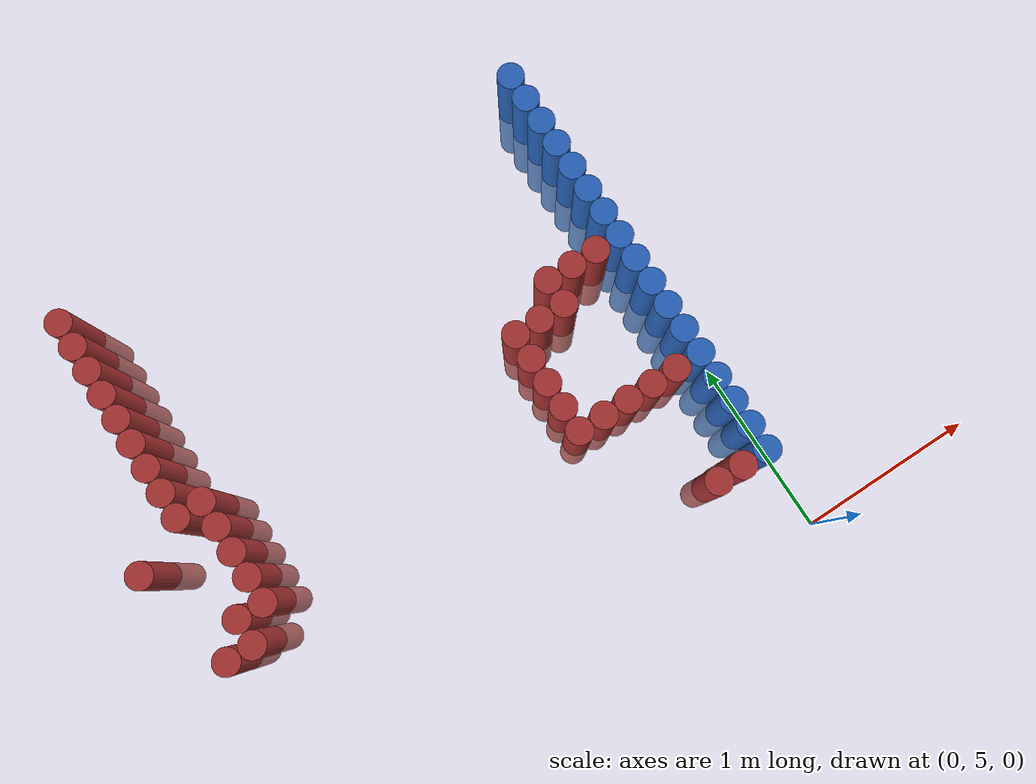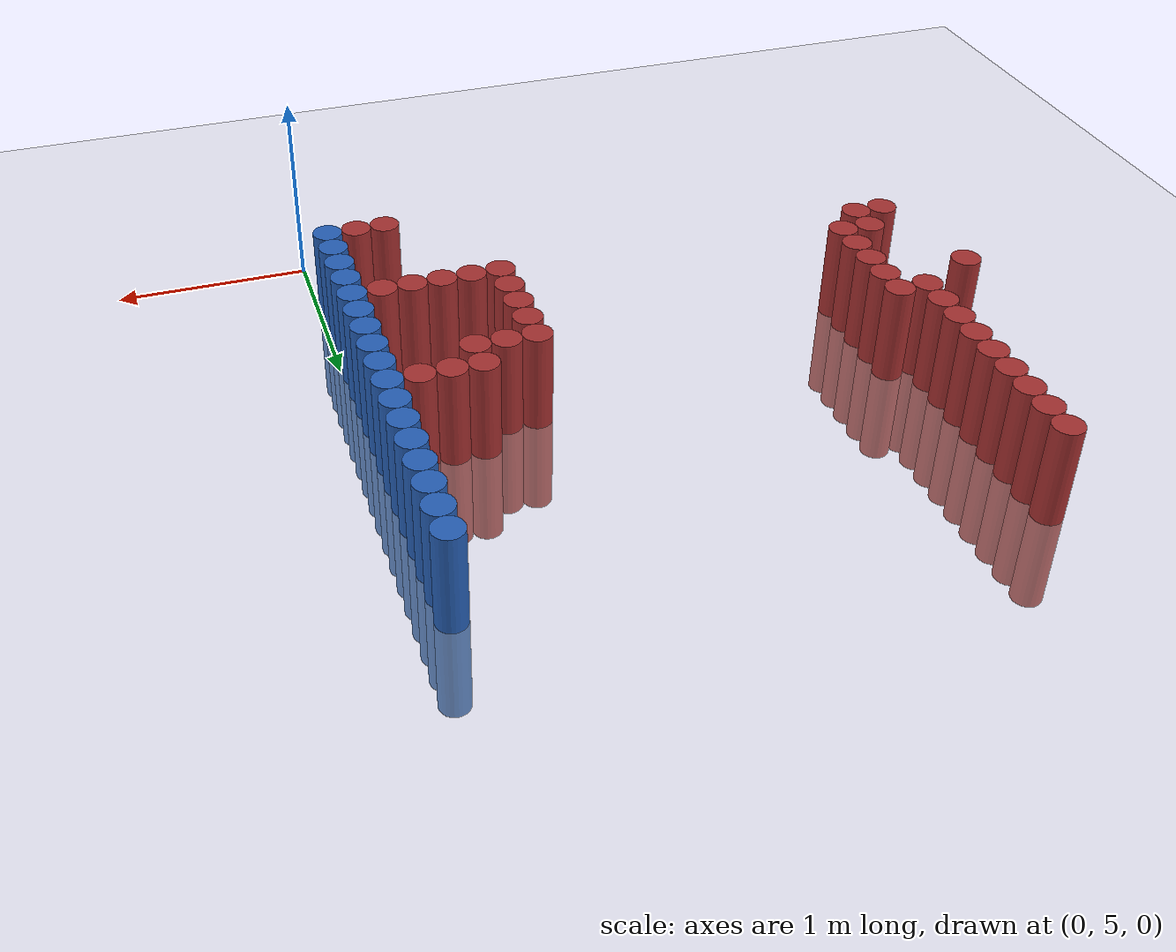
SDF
<sdf version="1.6">
 <world name="default">
  <model name="ground_plane">
   <static>1</static>
   <link name="link">
    <collision name="collision">
     <geometry><plane><normal>0 0 1</normal><size>100 100</size></plane></geometry>
     <surface><friction><ode><mu>100</mu><mu2>50</mu2></ode></friction></surface>
    </collision>
    <visual name="visual">
     <cast_shadows>0</cast_shadows>
     <geometry><plane><normal>0 0 1</normal><size>100 100</size></plane></geometry>
     <material>
      <script><uri>file://media/materials/scripts/gazebo.material</uri><name>Gazebo/Grey</name></script>
     </material>
    </visual>
   </link>
  </model>
  <model name="unit_cylinder_151">
   <static>1</static>
   <pose>-3.075000 6.675000 0.000000 0.000000 0.000000 0.000000</pose>
   <link name="link">
    <inertial>
     <mass>1</mass>
     <inertia><ixx>0.145833</ixx><ixy>0</ixy><ixz>0</ixz><iyy>0.145833</iyy><iyz>0</iyz><izz>0.125</izz></inertia>
    </inertial>
    <collision name="collision">
     <geometry><cylinder><radius>0.075000</radius><length>1</length></cylinder></geometry>
    </collision>
    <visual name="visual">
     <geometry><cylinder><radius>0.075000</radius><length>1</length></cylinder></geometry>
     <material>
      <ambient>0.648000 0.192000 0.192000 1</ambient>
      <diffuse>0.648000 0.192000 0.192000 1</diffuse>
     </material>
     <material>
      <script><name>Gazebo/Grey</name><uri>file://media/materials/scripts/gazebo.material</uri></script>
     </material>
    </visual>
   </link>
  </model>
  <model name="unit_cylinder_153">
   <static>1</static>
   <pose>-2.925000 6.075000 0.000000 0.000000 0.000000 0.000000</pose>
   <link name="link">
    <inertial>
     <mass>1</mass>
     <inertia><ixx>0.145833</ixx><ixy>0</ixy><ixz>0</ixz><iyy>0.145833</iyy><iyz>0</iyz><izz>0.125</izz></inertia>
    </inertial>
    <collision name="collision">
     <geometry><cylinder><radius>0.075000</radius><length>1</length></cylinder></geometry>
    </collision>
    <visual name="visual">
     <geometry><cylinder><radius>0.075000</radius><length>1</length></cylinder></geometry>
     <material>
      <ambient>0.648000 0.192000 0.192000 1</ambient>
      <diffuse>0.648000 0.192000 0.192000 1</diffuse>
     </material>
     <material>
      <script><name>Gazebo/Grey</name><uri>file://media/materials/scripts/gazebo.material</uri></script>
     </material>
    </visual>
   </link>
  </model>
  <model name="unit_cylinder_156">
   <static>1</static>
   <pose>-2.775000 6.075000 0.000000 0.000000 0.000000 0.000000</pose>
   <link name="link">
    <inertial>
     <mass>1</mass>
     <inertia><ixx>0.145833</ixx><ixy>0</ixy><ixz>0</ixz><iyy>0.145833</iyy><iyz>0</iyz><izz>0.125</izz></inertia>
    </inertial>
    <collision name="collision">
     <geometry><cylinder><radius>0.075000</radius><length>1</length></cylinder></geometry>
    </collision>
    <visual name="visual">
     <geometry><cylinder><radius>0.075000</radius><length>1</length></cylinder></geometry>
     <material>
      <ambient>0.648000 0.192000 0.192000 1</ambient>
      <diffuse>0.648000 0.192000 0.192000 1</diffuse>
     </material>
     <material>
      <script><name>Gazebo/Grey</name><uri>file://media/materials/scripts/gazebo.material</uri></script>
     </material>
    </visual>
   </link>
  </model>
  <model name="unit_cylinder_157">
   <static>1</static>
   <pose>-2.775000 6.225000 0.000000 0.000000 0.000000 0.000000</pose>
   <link name="link">
    <inertial>
     <mass>1</mass>
     <inertia><ixx>0.145833</ixx><ixy>0</ixy><ixz>0</ixz><iyy>0.145833</iyy><iyz>0</iyz><izz>0.125</izz></inertia>
    </inertial>
    <collision name="collision">
     <geometry><cylinder><radius>0.075000</radius><length>1</length></cylinder></geometry>
    </collision>
    <visual name="visual">
     <geometry><cylinder><radius>0.075000</radius><length>1</length></cylinder></geometry>
     <material>
      <ambient>0.648000 0.192000 0.192000 1</ambient>
      <diffuse>0.648000 0.192000 0.192000 1</diffuse>
     </material>
     <material>
      <script><name>Gazebo/Grey</name><uri>file://media/materials/scripts/gazebo.material</uri></script>
     </material>
    </visual>
   </link>
  </model>
  <model name="unit_cylinder_158">
   <static>1</static>
   <pose>-2.775000 6.825000 0.000000 0.000000 0.000000 0.000000</pose>
   <link name="link">
    <inertial>
     <mass>1</mass>
     <inertia><ixx>0.145833</ixx><ixy>0</ixy><ixz>0</ixz><iyy>0.145833</iyy><iyz>0</iyz><izz>0.125</izz></inertia>
    </inertial>
    <collision name="collision">
     <geometry><cylinder><radius>0.075000</radius><length>1</length></cylinder></geometry>
    </collision>
    <visual name="visual">
     <geometry><cylinder><radius>0.075000</radius><length>1</length></cylinder></geometry>
     <material>
      <ambient>0.648000 0.192000 0.192000 1</ambient>
      <diffuse>0.648000 0.192000 0.192000 1</diffuse>
     </material>
     <material>
      <script><name>Gazebo/Grey</name><uri>file://media/materials/scripts/gazebo.material</uri></script>
     </material>
    </visual>
   </link>
  </model>
  <model name="unit_cylinder_159">
   <static>1</static>
   <pose>-2.775000 6.975000 0.000000 0.000000 0.000000 0.000000</pose>
   <link name="link">
    <inertial>
     <mass>1</mass>
     <inertia><ixx>0.145833</ixx><ixy>0</ixy><ixz>0</ixz><iyy>0.145833</iyy><iyz>0</iyz><izz>0.125</izz></inertia>
    </inertial>
    <collision name="collision">
     <geometry><cylinder><radius>0.075000</radius><length>1</length></cylinder></geometry>
    </collision>
    <visual name="visual">
     <geometry><cylinder><radius>0.075000</radius><length>1</length></cylinder></geometry>
     <material>
      <ambient>0.648000 0.192000 0.192000 1</ambient>
      <diffuse>0.648000 0.192000 0.192000 1</diffuse>
     </material>
     <material>
      <script><name>Gazebo/Grey</name><uri>file://media/materials/scripts/gazebo.material</uri></script>
     </material>
    </visual>
   </link>
  </model>
  <model name="unit_cylinder_160">
   <static>1</static>
   <pose>-2.775000 7.125000 0.000000 0.000000 0.000000 0.000000</pose>
   <link name="link">
    <inertial>
     <mass>1</mass>
     <inertia><ixx>0.145833</ixx><ixy>0</ixy><ixz>0</ixz><iyy>0.145833</iyy><iyz>0</iyz><izz>0.125</izz></inertia>
    </inertial>
    <collision name="collision">
     <geometry><cylinder><radius>0.075000</radius><length>1</length></cylinder></geometry>
    </collision>
    <visual name="visual">
     <geometry><cylinder><radius>0.075000</radius><length>1</length></cylinder></geometry>
     <material>
      <ambient>0.648000 0.192000 0.192000 1</ambient>
      <diffuse>0.648000 0.192000 0.192000 1</diffuse>
     </material>
     <material>
      <script><name>Gazebo/Grey</name><uri>file://media/materials/scripts/gazebo.material</uri></script>
     </material>
    </visual>
   </link>
  </model>
  <model name="unit_cylinder_161">
   <static>1</static>
   <pose>-2.775000 7.275000 0.000000 0.000000 0.000000 0.000000</pose>
   <link name="link">
    <inertial>
     <mass>1</mass>
     <inertia><ixx>0.145833</ixx><ixy>0</ixy><ixz>0</ixz><iyy>0.145833</iyy><iyz>0</iyz><izz>0.125</izz></inertia>
    </inertial>
    <collision name="collision">
     <geometry><cylinder><radius>0.075000</radius><length>1</length></cylinder></geometry>
    </collision>
    <visual name="visual">
     <geometry><cylinder><radius>0.075000</radius><length>1</length></cylinder></geometry>
     <material>
      <ambient>0.648000 0.192000 0.192000 1</ambient>
      <diffuse>0.648000 0.192000 0.192000 1</diffuse>
     </material>
     <material>
      <script><name>Gazebo/Grey</name><uri>file://media/materials/scripts/gazebo.material</uri></script>
     </material>
    </visual>
   </link>
  </model>
  <model name="unit_cylinder_162">
   <static>1</static>
   <pose>-2.775000 7.425000 0.000000 0.000000 0.000000 0.000000</pose>
   <link name="link">
    <inertial>
     <mass>1</mass>
     <inertia><ixx>0.145833</ixx><ixy>0</ixy><ixz>0</ixz><iyy>0.145833</iyy><iyz>0</iyz><izz>0.125</izz></inertia>
    </inertial>
    <collision name="collision">
     <geometry><cylinder><radius>0.075000</radius><length>1</length></cylinder></geometry>
    </collision>
    <visual name="visual">
     <geometry><cylinder><radius>0.075000</radius><length>1</length></cylinder></geometry>
     <material>
      <ambient>0.648000 0.192000 0.192000 1</ambient>
      <diffuse>0.648000 0.192000 0.192000 1</diffuse>
     </material>
     <material>
      <script><name>Gazebo/Grey</name><uri>file://media/materials/scripts/gazebo.material</uri></script>
     </material>
    </visual>
   </link>
  </model>
  <model name="unit_cylinder_163">
   <static>1</static>
   <pose>-2.775000 7.575000 0.000000 0.000000 0.000000 0.000000</pose>
   <link name="link">
    <inertial>
     <mass>1</mass>
     <inertia><ixx>0.145833</ixx><ixy>0</ixy><ixz>0</ixz><iyy>0.145833</iyy><iyz>0</iyz><izz>0.125</izz></inertia>
    </inertial>
    <collision name="collision">
     <geometry><cylinder><radius>0.075000</radius><length>1</length></cylinder></geometry>
    </collision>
    <visual name="visual">
     <geometry><cylinder><radius>0.075000</radius><length>1</length></cylinder></geometry>
     <material>
      <ambient>0.648000 0.192000 0.192000 1</ambient>
      <diffuse>0.648000 0.192000 0.192000 1</diffuse>
     </material>
     <material>
      <script><name>Gazebo/Grey</name><uri>file://media/materials/scripts/gazebo.material</uri></script>
     </material>
    </visual>
   </link>
  </model>
  <model name="unit_cylinder_164">
   <static>1</static>
   <pose>-2.775000 7.725000 0.000000 0.000000 0.000000 0.000000</pose>
   <link name="link">
    <inertial>
     <mass>1</mass>
     <inertia><ixx>0.145833</ixx><ixy>0</ixy><ixz>0</ixz><iyy>0.145833</iyy><iyz>0</iyz><izz>0.125</izz></inertia>
    </inertial>
    <collision name="collision">
     <geometry><cylinder><radius>0.075000</radius><length>1</length></cylinder></geometry>
    </collision>
    <visual name="visual">
     <geometry><cylinder><radius>0.075000</radius><length>1</length></cylinder></geometry>
     <material>
      <ambient>0.648000 0.192000 0.192000 1</ambient>
      <diffuse>0.648000 0.192000 0.192000 1</diffuse>
     </material>
     <material>
      <script><name>Gazebo/Grey</name><uri>file://media/materials/scripts/gazebo.material</uri></script>
     </material>
    </visual>
   </link>
  </model>
  <model name="unit_cylinder_165">
   <static>1</static>
   <pose>-2.775000 7.875000 0.000000 0.000000 0.000000 0.000000</pose>
   <link name="link">
    <inertial>
     <mass>1</mass>
     <inertia><ixx>0.145833</ixx><ixy>0</ixy><ixz>0</ixz><iyy>0.145833</iyy><iyz>0</iyz><izz>0.125</izz></inertia>
    </inertial>
    <collision name="collision">
     <geometry><cylinder><radius>0.075000</radius><length>1</length></cylinder></geometry>
    </collision>
    <visual name="visual">
     <geometry><cylinder><radius>0.075000</radius><length>1</length></cylinder></geometry>
     <material>
      <ambient>0.648000 0.192000 0.192000 1</ambient>
      <diffuse>0.648000 0.192000 0.192000 1</diffuse>
     </material>
     <material>
      <script><name>Gazebo/Grey</name><uri>file://media/materials/scripts/gazebo.material</uri></script>
     </material>
    </visual>
   </link>
  </model>
  <model name="unit_cylinder_166">
   <static>1</static>
   <pose>-2.775000 8.025000 0.000000 0.000000 0.000000 0.000000</pose>
   <link name="link">
    <inertial>
     <mass>1</mass>
     <inertia><ixx>0.145833</ixx><ixy>0</ixy><ixz>0</ixz><iyy>0.145833</iyy><iyz>0</iyz><izz>0.125</izz></inertia>
    </inertial>
    <collision name="collision">
     <geometry><cylinder><radius>0.075000</radius><length>1</length></cylinder></geometry>
    </collision>
    <visual name="visual">
     <geometry><cylinder><radius>0.075000</radius><length>1</length></cylinder></geometry>
     <material>
      <ambient>0.648000 0.192000 0.192000 1</ambient>
      <diffuse>0.648000 0.192000 0.192000 1</diffuse>
     </material>
     <material>
      <script><name>Gazebo/Grey</name><uri>file://media/materials/scripts/gazebo.material</uri></script>
     </material>
    </visual>
   </link>
  </model>
  <model name="unit_cylinder_169">
   <static>1</static>
   <pose>-2.625000 6.225000 0.000000 0.000000 0.000000 0.000000</pose>
   <link name="link">
    <inertial>
     <mass>1</mass>
     <inertia><ixx>0.145833</ixx><ixy>0</ixy><ixz>0</ixz><iyy>0.145833</iyy><iyz>0</iyz><izz>0.125</izz></inertia>
    </inertial>
    <collision name="collision">
     <geometry><cylinder><radius>0.075000</radius><length>1</length></cylinder></geometry>
    </collision>
    <visual name="visual">
     <geometry><cylinder><radius>0.075000</radius><length>1</length></cylinder></geometry>
     <material>
      <ambient>0.648000 0.192000 0.192000 1</ambient>
      <diffuse>0.648000 0.192000 0.192000 1</diffuse>
     </material>
     <material>
      <script><name>Gazebo/Grey</name><uri>file://media/materials/scripts/gazebo.material</uri></script>
     </material>
    </visual>
   </link>
  </model>
  <model name="unit_cylinder_170">
   <static>1</static>
   <pose>-2.625000 6.375000 0.000000 0.000000 0.000000 0.000000</pose>
   <link name="link">
    <inertial>
     <mass>1</mass>
     <inertia><ixx>0.145833</ixx><ixy>0</ixy><ixz>0</ixz><iyy>0.145833</iyy><iyz>0</iyz><izz>0.125</izz></inertia>
    </inertial>
    <collision name="collision">
     <geometry><cylinder><radius>0.075000</radius><length>1</length></cylinder></geometry>
    </collision>
    <visual name="visual">
     <geometry><cylinder><radius>0.075000</radius><length>1</length></cylinder></geometry>
     <material>
      <ambient>0.648000 0.192000 0.192000 1</ambient>
      <diffuse>0.648000 0.192000 0.192000 1</diffuse>
     </material>
     <material>
      <script><name>Gazebo/Grey</name><uri>file://media/materials/scripts/gazebo.material</uri></script>
     </material>
    </visual>
   </link>
  </model>
  <model name="unit_cylinder_171">
   <static>1</static>
   <pose>-2.625000 6.525000 0.000000 0.000000 0.000000 0.000000</pose>
   <link name="link">
    <inertial>
     <mass>1</mass>
     <inertia><ixx>0.145833</ixx><ixy>0</ixy><ixz>0</ixz><iyy>0.145833</iyy><iyz>0</iyz><izz>0.125</izz></inertia>
    </inertial>
    <collision name="collision">
     <geometry><cylinder><radius>0.075000</radius><length>1</length></cylinder></geometry>
    </collision>
    <visual name="visual">
     <geometry><cylinder><radius>0.075000</radius><length>1</length></cylinder></geometry>
     <material>
      <ambient>0.648000 0.192000 0.192000 1</ambient>
      <diffuse>0.648000 0.192000 0.192000 1</diffuse>
     </material>
     <material>
      <script><name>Gazebo/Grey</name><uri>file://media/materials/scripts/gazebo.material</uri></script>
     </material>
    </visual>
   </link>
  </model>
  <model name="unit_cylinder_172">
   <static>1</static>
   <pose>-2.625000 6.675000 0.000000 0.000000 0.000000 0.000000</pose>
   <link name="link">
    <inertial>
     <mass>1</mass>
     <inertia><ixx>0.145833</ixx><ixy>0</ixy><ixz>0</ixz><iyy>0.145833</iyy><iyz>0</iyz><izz>0.125</izz></inertia>
    </inertial>
    <collision name="collision">
     <geometry><cylinder><radius>0.075000</radius><length>1</length></cylinder></geometry>
    </collision>
    <visual name="visual">
     <geometry><cylinder><radius>0.075000</radius><length>1</length></cylinder></geometry>
     <material>
      <ambient>0.648000 0.192000 0.192000 1</ambient>
      <diffuse>0.648000 0.192000 0.192000 1</diffuse>
     </material>
     <material>
      <script><name>Gazebo/Grey</name><uri>file://media/materials/scripts/gazebo.material</uri></script>
     </material>
    </visual>
   </link>
  </model>
  <model name="unit_cylinder_173">
   <static>1</static>
   <pose>-2.625000 6.825000 0.000000 0.000000 0.000000 0.000000</pose>
   <link name="link">
    <inertial>
     <mass>1</mass>
     <inertia><ixx>0.145833</ixx><ixy>0</ixy><ixz>0</ixz><iyy>0.145833</iyy><iyz>0</iyz><izz>0.125</izz></inertia>
    </inertial>
    <collision name="collision">
     <geometry><cylinder><radius>0.075000</radius><length>1</length></cylinder></geometry>
    </collision>
    <visual name="visual">
     <geometry><cylinder><radius>0.075000</radius><length>1</length></cylinder></geometry>
     <material>
      <ambient>0.648000 0.192000 0.192000 1</ambient>
      <diffuse>0.648000 0.192000 0.192000 1</diffuse>
     </material>
     <material>
      <script><name>Gazebo/Grey</name><uri>file://media/materials/scripts/gazebo.material</uri></script>
     </material>
    </visual>
   </link>
  </model>
  <model name="unit_cylinder_195">
   <static>1</static>
   <pose>-0.825000 6.075000 0.000000 0.000000 0.000000 0.000000</pose>
   <link name="link">
    <inertial>
     <mass>1</mass>
     <inertia><ixx>0.145833</ixx><ixy>0</ixy><ixz>0</ixz><iyy>0.145833</iyy><iyz>0</iyz><izz>0.125</izz></inertia>
    </inertial>
    <collision name="collision">
     <geometry><cylinder><radius>0.075000</radius><length>1</length></cylinder></geometry>
    </collision>
    <visual name="visual">
     <geometry><cylinder><radius>0.075000</radius><length>1</length></cylinder></geometry>
     <material>
      <ambient>0.648000 0.192000 0.192000 1</ambient>
      <diffuse>0.648000 0.192000 0.192000 1</diffuse>
     </material>
     <material>
      <script><name>Gazebo/Grey</name><uri>file://media/materials/scripts/gazebo.material</uri></script>
     </material>
    </visual>
   </link>
  </model>
  <model name="unit_cylinder_196">
   <static>1</static>
   <pose>-0.825000 6.225000 0.000000 0.000000 0.000000 0.000000</pose>
   <link name="link">
    <inertial>
     <mass>1</mass>
     <inertia><ixx>0.145833</ixx><ixy>0</ixy><ixz>0</ixz><iyy>0.145833</iyy><iyz>0</iyz><izz>0.125</izz></inertia>
    </inertial>
    <collision name="collision">
     <geometry><cylinder><radius>0.075000</radius><length>1</length></cylinder></geometry>
    </collision>
    <visual name="visual">
     <geometry><cylinder><radius>0.075000</radius><length>1</length></cylinder></geometry>
     <material>
      <ambient>0.648000 0.192000 0.192000 1</ambient>
      <diffuse>0.648000 0.192000 0.192000 1</diffuse>
     </material>
     <material>
      <script><name>Gazebo/Grey</name><uri>file://media/materials/scripts/gazebo.material</uri></script>
     </material>
    </visual>
   </link>
  </model>
  <model name="unit_cylinder_197">
   <static>1</static>
   <pose>-0.825000 6.375000 0.000000 0.000000 0.000000 0.000000</pose>
   <link name="link">
    <inertial>
     <mass>1</mass>
     <inertia><ixx>0.145833</ixx><ixy>0</ixy><ixz>0</ixz><iyy>0.145833</iyy><iyz>0</iyz><izz>0.125</izz></inertia>
    </inertial>
    <collision name="collision">
     <geometry><cylinder><radius>0.075000</radius><length>1</length></cylinder></geometry>
    </collision>
    <visual name="visual">
     <geometry><cylinder><radius>0.075000</radius><length>1</length></cylinder></geometry>
     <material>
      <ambient>0.648000 0.192000 0.192000 1</ambient>
      <diffuse>0.648000 0.192000 0.192000 1</diffuse>
     </material>
     <material>
      <script><name>Gazebo/Grey</name><uri>file://media/materials/scripts/gazebo.material</uri></script>
     </material>
    </visual>
   </link>
  </model>
  <model name="unit_cylinder_198">
   <static>1</static>
   <pose>-0.825000 6.525000 0.000000 0.000000 0.000000 0.000000</pose>
   <link name="link">
    <inertial>
     <mass>1</mass>
     <inertia><ixx>0.145833</ixx><ixy>0</ixy><ixz>0</ixz><iyy>0.145833</iyy><iyz>0</iyz><izz>0.125</izz></inertia>
    </inertial>
    <collision name="collision">
     <geometry><cylinder><radius>0.075000</radius><length>1</length></cylinder></geometry>
    </collision>
    <visual name="visual">
     <geometry><cylinder><radius>0.075000</radius><length>1</length></cylinder></geometry>
     <material>
      <ambient>0.648000 0.192000 0.192000 1</ambient>
      <diffuse>0.648000 0.192000 0.192000 1</diffuse>
     </material>
     <material>
      <script><name>Gazebo/Grey</name><uri>file://media/materials/scripts/gazebo.material</uri></script>
     </material>
    </visual>
   </link>
  </model>
  <model name="unit_cylinder_199">
   <static>1</static>
   <pose>-0.825000 6.675000 0.000000 0.000000 0.000000 0.000000</pose>
   <link name="link">
    <inertial>
     <mass>1</mass>
     <inertia><ixx>0.145833</ixx><ixy>0</ixy><ixz>0</ixz><iyy>0.145833</iyy><iyz>0</iyz><izz>0.125</izz></inertia>
    </inertial>
    <collision name="collision">
     <geometry><cylinder><radius>0.075000</radius><length>1</length></cylinder></geometry>
    </collision>
    <visual name="visual">
     <geometry><cylinder><radius>0.075000</radius><length>1</length></cylinder></geometry>
     <material>
      <ambient>0.648000 0.192000 0.192000 1</ambient>
      <diffuse>0.648000 0.192000 0.192000 1</diffuse>
     </material>
     <material>
      <script><name>Gazebo/Grey</name><uri>file://media/materials/scripts/gazebo.material</uri></script>
     </material>
    </visual>
   </link>
  </model>
  <model name="unit_cylinder_203">
   <static>1</static>
   <pose>-0.675000 6.075000 0.000000 0.000000 0.000000 0.000000</pose>
   <link name="link">
    <inertial>
     <mass>1</mass>
     <inertia><ixx>0.145833</ixx><ixy>0</ixy><ixz>0</ixz><iyy>0.145833</iyy><iyz>0</iyz><izz>0.125</izz></inertia>
    </inertial>
    <collision name="collision">
     <geometry><cylinder><radius>0.075000</radius><length>1</length></cylinder></geometry>
    </collision>
    <visual name="visual">
     <geometry><cylinder><radius>0.075000</radius><length>1</length></cylinder></geometry>
     <material>
      <ambient>0.648000 0.192000 0.192000 1</ambient>
      <diffuse>0.648000 0.192000 0.192000 1</diffuse>
     </material>
     <material>
      <script><name>Gazebo/Grey</name><uri>file://media/materials/scripts/gazebo.material</uri></script>
     </material>
    </visual>
   </link>
  </model>
  <model name="unit_cylinder_204">
   <static>1</static>
   <pose>-0.675000 6.675000 0.000000 0.000000 0.000000 0.000000</pose>
   <link name="link">
    <inertial>
     <mass>1</mass>
     <inertia><ixx>0.145833</ixx><ixy>0</ixy><ixz>0</ixz><iyy>0.145833</iyy><iyz>0</iyz><izz>0.125</izz></inertia>
    </inertial>
    <collision name="collision">
     <geometry><cylinder><radius>0.075000</radius><length>1</length></cylinder></geometry>
    </collision>
    <visual name="visual">
     <geometry><cylinder><radius>0.075000</radius><length>1</length></cylinder></geometry>
     <material>
      <ambient>0.648000 0.192000 0.192000 1</ambient>
      <diffuse>0.648000 0.192000 0.192000 1</diffuse>
     </material>
     <material>
      <script><name>Gazebo/Grey</name><uri>file://media/materials/scripts/gazebo.material</uri></script>
     </material>
    </visual>
   </link>
  </model>
  <model name="unit_cylinder_211">
   <static>1</static>
   <pose>-0.525000 6.075000 0.000000 0.000000 0.000000 0.000000</pose>
   <link name="link">
    <inertial>
     <mass>1</mass>
     <inertia><ixx>0.145833</ixx><ixy>0</ixy><ixz>0</ixz><iyy>0.145833</iyy><iyz>0</iyz><izz>0.125</izz></inertia>
    </inertial>
    <collision name="collision">
     <geometry><cylinder><radius>0.075000</radius><length>1</length></cylinder></geometry>
    </collision>
    <visual name="visual">
     <geometry><cylinder><radius>0.075000</radius><length>1</length></cylinder></geometry>
     <material>
      <ambient>0.648000 0.192000 0.192000 1</ambient>
      <diffuse>0.648000 0.192000 0.192000 1</diffuse>
     </material>
     <material>
      <script><name>Gazebo/Grey</name><uri>file://media/materials/scripts/gazebo.material</uri></script>
     </material>
    </visual>
   </link>
  </model>
  <model name="unit_cylinder_212">
   <static>1</static>
   <pose>-0.525000 6.675000 0.000000 0.000000 0.000000 0.000000</pose>
   <link name="link">
    <inertial>
     <mass>1</mass>
     <inertia><ixx>0.145833</ixx><ixy>0</ixy><ixz>0</ixz><iyy>0.145833</iyy><iyz>0</iyz><izz>0.125</izz></inertia>
    </inertial>
    <collision name="collision">
     <geometry><cylinder><radius>0.075000</radius><length>1</length></cylinder></geometry>
    </collision>
    <visual name="visual">
     <geometry><cylinder><radius>0.075000</radius><length>1</length></cylinder></geometry>
     <material>
      <ambient>0.648000 0.192000 0.192000 1</ambient>
      <diffuse>0.648000 0.192000 0.192000 1</diffuse>
     </material>
     <material>
      <script><name>Gazebo/Grey</name><uri>file://media/materials/scripts/gazebo.material</uri></script>
     </material>
    </visual>
   </link>
  </model>
  <model name="unit_cylinder_213">
   <static>1</static>
   <pose>-0.525000 6.825000 0.000000 0.000000 0.000000 0.000000</pose>
   <link name="link">
    <inertial>
     <mass>1</mass>
     <inertia><ixx>0.145833</ixx><ixy>0</ixy><ixz>0</ixz><iyy>0.145833</iyy><iyz>0</iyz><izz>0.125</izz></inertia>
    </inertial>
    <collision name="collision">
     <geometry><cylinder><radius>0.075000</radius><length>1</length></cylinder></geometry>
    </collision>
    <visual name="visual">
     <geometry><cylinder><radius>0.075000</radius><length>1</length></cylinder></geometry>
     <material>
      <ambient>0.648000 0.192000 0.192000 1</ambient>
      <diffuse>0.648000 0.192000 0.192000 1</diffuse>
     </material>
     <material>
      <script><name>Gazebo/Grey</name><uri>file://media/materials/scripts/gazebo.material</uri></script>
     </material>
    </visual>
   </link>
  </model>
  <model name="unit_cylinder_218">
   <static>1</static>
   <pose>-0.375000 5.475000 0.000000 0.000000 0.000000 0.000000</pose>
   <link name="link">
    <inertial>
     <mass>1</mass>
     <inertia><ixx>0.145833</ixx><ixy>0</ixy><ixz>0</ixz><iyy>0.145833</iyy><iyz>0</iyz><izz>0.125</izz></inertia>
    </inertial>
    <collision name="collision">
     <geometry><cylinder><radius>0.075000</radius><length>1</length></cylinder></geometry>
    </collision>
    <visual name="visual">
     <geometry><cylinder><radius>0.075000</radius><length>1</length></cylinder></geometry>
     <material>
      <ambient>0.648000 0.192000 0.192000 1</ambient>
      <diffuse>0.648000 0.192000 0.192000 1</diffuse>
     </material>
     <material>
      <script><name>Gazebo/Grey</name><uri>file://media/materials/scripts/gazebo.material</uri></script>
     </material>
    </visual>
   </link>
  </model>
  <model name="unit_cylinder_219">
   <static>1</static>
   <pose>-0.375000 6.075000 0.000000 0.000000 0.000000 0.000000</pose>
   <link name="link">
    <inertial>
     <mass>1</mass>
     <inertia><ixx>0.145833</ixx><ixy>0</ixy><ixz>0</ixz><iyy>0.145833</iyy><iyz>0</iyz><izz>0.125</izz></inertia>
    </inertial>
    <collision name="collision">
     <geometry><cylinder><radius>0.075000</radius><length>1</length></cylinder></geometry>
    </collision>
    <visual name="visual">
     <geometry><cylinder><radius>0.075000</radius><length>1</length></cylinder></geometry>
     <material>
      <ambient>0.648000 0.192000 0.192000 1</ambient>
      <diffuse>0.648000 0.192000 0.192000 1</diffuse>
     </material>
     <material>
      <script><name>Gazebo/Grey</name><uri>file://media/materials/scripts/gazebo.material</uri></script>
     </material>
    </visual>
   </link>
  </model>
  <model name="unit_cylinder_220">
   <static>1</static>
   <pose>-0.375000 6.825000 0.000000 0.000000 0.000000 0.000000</pose>
   <link name="link">
    <inertial>
     <mass>1</mass>
     <inertia><ixx>0.145833</ixx><ixy>0</ixy><ixz>0</ixz><iyy>0.145833</iyy><iyz>0</iyz><izz>0.125</izz></inertia>
    </inertial>
    <collision name="collision">
     <geometry><cylinder><radius>0.075000</radius><length>1</length></cylinder></geometry>
    </collision>
    <visual name="visual">
     <geometry><cylinder><radius>0.075000</radius><length>1</length></cylinder></geometry>
     <material>
      <ambient>0.648000 0.192000 0.192000 1</ambient>
      <diffuse>0.648000 0.192000 0.192000 1</diffuse>
     </material>
     <material>
      <script><name>Gazebo/Grey</name><uri>file://media/materials/scripts/gazebo.material</uri></script>
     </material>
    </visual>
   </link>
  </model>
  <model name="unit_cylinder_224">
   <static>1</static>
   <pose>-0.225000 5.475000 0.000000 0.000000 0.000000 0.000000</pose>
   <link name="link">
    <inertial>
     <mass>1</mass>
     <inertia><ixx>0.145833</ixx><ixy>0</ixy><ixz>0</ixz><iyy>0.145833</iyy><iyz>0</iyz><izz>0.125</izz></inertia>
    </inertial>
    <collision name="collision">
     <geometry><cylinder><radius>0.075000</radius><length>1</length></cylinder></geometry>
    </collision>
    <visual name="visual">
     <geometry><cylinder><radius>0.075000</radius><length>1</length></cylinder></geometry>
     <material>
      <ambient>0.648000 0.192000 0.192000 1</ambient>
      <diffuse>0.648000 0.192000 0.192000 1</diffuse>
     </material>
     <material>
      <script><name>Gazebo/Grey</name><uri>file://media/materials/scripts/gazebo.material</uri></script>
     </material>
    </visual>
   </link>
  </model>
  <model name="unit_cylinder_225">
   <static>1</static>
   <pose>-0.225000 6.075000 0.000000 0.000000 0.000000 0.000000</pose>
   <link name="link">
    <inertial>
     <mass>1</mass>
     <inertia><ixx>0.145833</ixx><ixy>0</ixy><ixz>0</ixz><iyy>0.145833</iyy><iyz>0</iyz><izz>0.125</izz></inertia>
    </inertial>
    <collision name="collision">
     <geometry><cylinder><radius>0.075000</radius><length>1</length></cylinder></geometry>
    </collision>
    <visual name="visual">
     <geometry><cylinder><radius>0.075000</radius><length>1</length></cylinder></geometry>
     <material>
      <ambient>0.648000 0.192000 0.192000 1</ambient>
      <diffuse>0.648000 0.192000 0.192000 1</diffuse>
     </material>
     <material>
      <script><name>Gazebo/Grey</name><uri>file://media/materials/scripts/gazebo.material</uri></script>
     </material>
    </visual>
   </link>
  </model>
  <model name="unit_cylinder_226">
   <static>1</static>
   <pose>-0.225000 6.825000 0.000000 0.000000 0.000000 0.000000</pose>
   <link name="link">
    <inertial>
     <mass>1</mass>
     <inertia><ixx>0.145833</ixx><ixy>0</ixy><ixz>0</ixz><iyy>0.145833</iyy><iyz>0</iyz><izz>0.125</izz></inertia>
    </inertial>
    <collision name="collision">
     <geometry><cylinder><radius>0.075000</radius><length>1</length></cylinder></geometry>
    </collision>
    <visual name="visual">
     <geometry><cylinder><radius>0.075000</radius><length>1</length></cylinder></geometry>
     <material>
      <ambient>0.648000 0.192000 0.192000 1</ambient>
      <diffuse>0.648000 0.192000 0.192000 1</diffuse>
     </material>
     <material>
      <script><name>Gazebo/Grey</name><uri>file://media/materials/scripts/gazebo.material</uri></script>
     </material>
    </visual>
   </link>
  </model>
  <model name="unit_cylinder_231">
   <static>1</static>
   <pose>-0.075000 5.475000 0.000000 0.000000 0.000000 0.000000</pose>
   <link name="link">
    <inertial>
     <mass>1</mass>
     <inertia><ixx>0.145833</ixx><ixy>0</ixy><ixz>0</ixz><iyy>0.145833</iyy><iyz>0</iyz><izz>0.125</izz></inertia>
    </inertial>
    <collision name="collision">
     <geometry><cylinder><radius>0.075000</radius><length>1</length></cylinder></geometry>
    </collision>
    <visual name="visual">
     <geometry><cylinder><radius>0.075000</radius><length>1</length></cylinder></geometry>
     <material>
      <ambient>0.152000 0.379000 0.720000 1</ambient>
      <diffuse>0.152000 0.379000 0.720000 1</diffuse>
     </material>
     <material>
      <script><name>Gazebo/Grey</name><uri>file://media/materials/scripts/gazebo.material</uri></script>
     </material>
    </visual>
   </link>
  </model>
  <model name="unit_cylinder_232">
   <static>1</static>
   <pose>-0.075000 5.625000 0.000000 0.000000 0.000000 0.000000</pose>
   <link name="link">
    <inertial>
     <mass>1</mass>
     <inertia><ixx>0.145833</ixx><ixy>0</ixy><ixz>0</ixz><iyy>0.145833</iyy><iyz>0</iyz><izz>0.125</izz></inertia>
    </inertial>
    <collision name="collision">
     <geometry><cylinder><radius>0.075000</radius><length>1</length></cylinder></geometry>
    </collision>
    <visual name="visual">
     <geometry><cylinder><radius>0.075000</radius><length>1</length></cylinder></geometry>
     <material>
      <ambient>0.152000 0.379000 0.720000 1</ambient>
      <diffuse>0.152000 0.379000 0.720000 1</diffuse>
     </material>
     <material>
      <script><name>Gazebo/Grey</name><uri>file://media/materials/scripts/gazebo.material</uri></script>
     </material>
    </visual>
   </link>
  </model>
  <model name="unit_cylinder_233">
   <static>1</static>
   <pose>-0.075000 5.775000 0.000000 0.000000 0.000000 0.000000</pose>
   <link name="link">
    <inertial>
     <mass>1</mass>
     <inertia><ixx>0.145833</ixx><ixy>0</ixy><ixz>0</ixz><iyy>0.145833</iyy><iyz>0</iyz><izz>0.125</izz></inertia>
    </inertial>
    <collision name="collision">
     <geometry><cylinder><radius>0.075000</radius><length>1</length></cylinder></geometry>
    </collision>
    <visual name="visual">
     <geometry><cylinder><radius>0.075000</radius><length>1</length></cylinder></geometry>
     <material>
      <ambient>0.152000 0.379000 0.720000 1</ambient>
      <diffuse>0.152000 0.379000 0.720000 1</diffuse>
     </material>
     <material>
      <script><name>Gazebo/Grey</name><uri>file://media/materials/scripts/gazebo.material</uri></script>
     </material>
    </visual>
   </link>
  </model>
  <model name="unit_cylinder_234">
   <static>1</static>
   <pose>-0.075000 5.925000 0.000000 0.000000 0.000000 0.000000</pose>
   <link name="link">
    <inertial>
     <mass>1</mass>
     <inertia><ixx>0.145833</ixx><ixy>0</ixy><ixz>0</ixz><iyy>0.145833</iyy><iyz>0</iyz><izz>0.125</izz></inertia>
    </inertial>
    <collision name="collision">
     <geometry><cylinder><radius>0.075000</radius><length>1</length></cylinder></geometry>
    </collision>
    <visual name="visual">
     <geometry><cylinder><radius>0.075000</radius><length>1</length></cylinder></geometry>
     <material>
      <ambient>0.152000 0.379000 0.720000 1</ambient>
      <diffuse>0.152000 0.379000 0.720000 1</diffuse>
     </material>
     <material>
      <script><name>Gazebo/Grey</name><uri>file://media/materials/scripts/gazebo.material</uri></script>
     </material>
    </visual>
   </link>
  </model>
  <model name="unit_cylinder_235">
   <static>1</static>
   <pose>-0.075000 6.075000 0.000000 0.000000 0.000000 0.000000</pose>
   <link name="link">
    <inertial>
     <mass>1</mass>
     <inertia><ixx>0.145833</ixx><ixy>0</ixy><ixz>0</ixz><iyy>0.145833</iyy><iyz>0</iyz><izz>0.125</izz></inertia>
    </inertial>
    <collision name="collision">
     <geometry><cylinder><radius>0.075000</radius><length>1</length></cylinder></geometry>
    </collision>
    <visual name="visual">
     <geometry><cylinder><radius>0.075000</radius><length>1</length></cylinder></geometry>
     <material>
      <ambient>0.152000 0.379000 0.720000 1</ambient>
      <diffuse>0.152000 0.379000 0.720000 1</diffuse>
     </material>
     <material>
      <script><name>Gazebo/Grey</name><uri>file://media/materials/scripts/gazebo.material</uri></script>
     </material>
    </visual>
   </link>
  </model>
  <model name="unit_cylinder_236">
   <static>1</static>
   <pose>-0.075000 6.225000 0.000000 0.000000 0.000000 0.000000</pose>
   <link name="link">
    <inertial>
     <mass>1</mass>
     <inertia><ixx>0.145833</ixx><ixy>0</ixy><ixz>0</ixz><iyy>0.145833</iyy><iyz>0</iyz><izz>0.125</izz></inertia>
    </inertial>
    <collision name="collision">
     <geometry><cylinder><radius>0.075000</radius><length>1</length></cylinder></geometry>
    </collision>
    <visual name="visual">
     <geometry><cylinder><radius>0.075000</radius><length>1</length></cylinder></geometry>
     <material>
      <ambient>0.152000 0.379000 0.720000 1</ambient>
      <diffuse>0.152000 0.379000 0.720000 1</diffuse>
     </material>
     <material>
      <script><name>Gazebo/Grey</name><uri>file://media/materials/scripts/gazebo.material</uri></script>
     </material>
    </visual>
   </link>
  </model>
  <model name="unit_cylinder_237">
   <static>1</static>
   <pose>-0.075000 6.375000 0.000000 0.000000 0.000000 0.000000</pose>
   <link name="link">
    <inertial>
     <mass>1</mass>
     <inertia><ixx>0.145833</ixx><ixy>0</ixy><ixz>0</ixz><iyy>0.145833</iyy><iyz>0</iyz><izz>0.125</izz></inertia>
    </inertial>
    <collision name="collision">
     <geometry><cylinder><radius>0.075000</radius><length>1</length></cylinder></geometry>
    </collision>
    <visual name="visual">
     <geometry><cylinder><radius>0.075000</radius><length>1</length></cylinder></geometry>
     <material>
      <ambient>0.152000 0.379000 0.720000 1</ambient>
      <diffuse>0.152000 0.379000 0.720000 1</diffuse>
     </material>
     <material>
      <script><name>Gazebo/Grey</name><uri>file://media/materials/scripts/gazebo.material</uri></script>
     </material>
    </visual>
   </link>
  </model>
  <model name="unit_cylinder_238">
   <static>1</static>
   <pose>-0.075000 6.525000 0.000000 0.000000 0.000000 0.000000</pose>
   <link name="link">
    <inertial>
     <mass>1</mass>
     <inertia><ixx>0.145833</ixx><ixy>0</ixy><ixz>0</ixz><iyy>0.145833</iyy><iyz>0</iyz><izz>0.125</izz></inertia>
    </inertial>
    <collision name="collision">
     <geometry><cylinder><radius>0.075000</radius><length>1</length></cylinder></geometry>
    </collision>
    <visual name="visual">
     <geometry><cylinder><radius>0.075000</radius><length>1</length></cylinder></geometry>
     <material>
      <ambient>0.152000 0.379000 0.720000 1</ambient>
      <diffuse>0.152000 0.379000 0.720000 1</diffuse>
     </material>
     <material>
      <script><name>Gazebo/Grey</name><uri>file://media/materials/scripts/gazebo.material</uri></script>
     </material>
    </visual>
   </link>
  </model>
  <model name="unit_cylinder_239">
   <static>1</static>
   <pose>-0.075000 6.675000 0.000000 0.000000 0.000000 0.000000</pose>
   <link name="link">
    <inertial>
     <mass>1</mass>
     <inertia><ixx>0.145833</ixx><ixy>0</ixy><ixz>0</ixz><iyy>0.145833</iyy><iyz>0</iyz><izz>0.125</izz></inertia>
    </inertial>
    <collision name="collision">
     <geometry><cylinder><radius>0.075000</radius><length>1</length></cylinder></geometry>
    </collision>
    <visual name="visual">
     <geometry><cylinder><radius>0.075000</radius><length>1</length></cylinder></geometry>
     <material>
      <ambient>0.152000 0.379000 0.720000 1</ambient>
      <diffuse>0.152000 0.379000 0.720000 1</diffuse>
     </material>
     <material>
      <script><name>Gazebo/Grey</name><uri>file://media/materials/scripts/gazebo.material</uri></script>
     </material>
    </visual>
   </link>
  </model>
  <model name="unit_cylinder_240">
   <static>1</static>
   <pose>-0.075000 6.825000 0.000000 0.000000 0.000000 0.000000</pose>
   <link name="link">
    <inertial>
     <mass>1</mass>
     <inertia><ixx>0.145833</ixx><ixy>0</ixy><ixz>0</ixz><iyy>0.145833</iyy><iyz>0</iyz><izz>0.125</izz></inertia>
    </inertial>
    <collision name="collision">
     <geometry><cylinder><radius>0.075000</radius><length>1</length></cylinder></geometry>
    </collision>
    <visual name="visual">
     <geometry><cylinder><radius>0.075000</radius><length>1</length></cylinder></geometry>
     <material>
      <ambient>0.152000 0.379000 0.720000 1</ambient>
      <diffuse>0.152000 0.379000 0.720000 1</diffuse>
     </material>
     <material>
      <script><name>Gazebo/Grey</name><uri>file://media/materials/scripts/gazebo.material</uri></script>
     </material>
    </visual>
   </link>
  </model>
  <model name="unit_cylinder_241">
   <static>1</static>
   <pose>-0.075000 6.975000 0.000000 0.000000 0.000000 0.000000</pose>
   <link name="link">
    <inertial>
     <mass>1</mass>
     <inertia><ixx>0.145833</ixx><ixy>0</ixy><ixz>0</ixz><iyy>0.145833</iyy><iyz>0</iyz><izz>0.125</izz></inertia>
    </inertial>
    <collision name="collision">
     <geometry><cylinder><radius>0.075000</radius><length>1</length></cylinder></geometry>
    </collision>
    <visual name="visual">
     <geometry><cylinder><radius>0.075000</radius><length>1</length></cylinder></geometry>
     <material>
      <ambient>0.152000 0.379000 0.720000 1</ambient>
      <diffuse>0.152000 0.379000 0.720000 1</diffuse>
     </material>
     <material>
      <script><name>Gazebo/Grey</name><uri>file://media/materials/scripts/gazebo.material</uri></script>
     </material>
    </visual>
   </link>
  </model>
  <model name="unit_cylinder_242">
   <static>1</static>
   <pose>-0.075000 7.125000 0.000000 0.000000 0.000000 0.000000</pose>
   <link name="link">
    <inertial>
     <mass>1</mass>
     <inertia><ixx>0.145833</ixx><ixy>0</ixy><ixz>0</ixz><iyy>0.145833</iyy><iyz>0</iyz><izz>0.125</izz></inertia>
    </inertial>
    <collision name="collision">
     <geometry><cylinder><radius>0.075000</radius><length>1</length></cylinder></geometry>
    </collision>
    <visual name="visual">
     <geometry><cylinder><radius>0.075000</radius><length>1</length></cylinder></geometry>
     <material>
      <ambient>0.152000 0.379000 0.720000 1</ambient>
      <diffuse>0.152000 0.379000 0.720000 1</diffuse>
     </material>
     <material>
      <script><name>Gazebo/Grey</name><uri>file://media/materials/scripts/gazebo.material</uri></script>
     </material>
    </visual>
   </link>
  </model>
  <model name="unit_cylinder_243">
   <static>1</static>
   <pose>-0.075000 7.275000 0.000000 0.000000 0.000000 0.000000</pose>
   <link name="link">
    <inertial>
     <mass>1</mass>
     <inertia><ixx>0.145833</ixx><ixy>0</ixy><ixz>0</ixz><iyy>0.145833</iyy><iyz>0</iyz><izz>0.125</izz></inertia>
    </inertial>
    <collision name="collision">
     <geometry><cylinder><radius>0.075000</radius><length>1</length></cylinder></geometry>
    </collision>
    <visual name="visual">
     <geometry><cylinder><radius>0.075000</radius><length>1</length></cylinder></geometry>
     <material>
      <ambient>0.152000 0.379000 0.720000 1</ambient>
      <diffuse>0.152000 0.379000 0.720000 1</diffuse>
     </material>
     <material>
      <script><name>Gazebo/Grey</name><uri>file://media/materials/scripts/gazebo.material</uri></script>
     </material>
    </visual>
   </link>
  </model>
  <model name="unit_cylinder_244">
   <static>1</static>
   <pose>-0.075000 7.425000 0.000000 0.000000 0.000000 0.000000</pose>
   <link name="link">
    <inertial>
     <mass>1</mass>
     <inertia><ixx>0.145833</ixx><ixy>0</ixy><ixz>0</ixz><iyy>0.145833</iyy><iyz>0</iyz><izz>0.125</izz></inertia>
    </inertial>
    <collision name="collision">
     <geometry><cylinder><radius>0.075000</radius><length>1</length></cylinder></geometry>
    </collision>
    <visual name="visual">
     <geometry><cylinder><radius>0.075000</radius><length>1</length></cylinder></geometry>
     <material>
      <ambient>0.152000 0.379000 0.720000 1</ambient>
      <diffuse>0.152000 0.379000 0.720000 1</diffuse>
     </material>
     <material>
      <script><name>Gazebo/Grey</name><uri>file://media/materials/scripts/gazebo.material</uri></script>
     </material>
    </visual>
   </link>
  </model>
  <model name="unit_cylinder_245">
   <static>1</static>
   <pose>-0.075000 7.575000 0.000000 0.000000 0.000000 0.000000</pose>
   <link name="link">
    <inertial>
     <mass>1</mass>
     <inertia><ixx>0.145833</ixx><ixy>0</ixy><ixz>0</ixz><iyy>0.145833</iyy><iyz>0</iyz><izz>0.125</izz></inertia>
    </inertial>
    <collision name="collision">
     <geometry><cylinder><radius>0.075000</radius><length>1</length></cylinder></geometry>
    </collision>
    <visual name="visual">
     <geometry><cylinder><radius>0.075000</radius><length>1</length></cylinder></geometry>
     <material>
      <ambient>0.152000 0.379000 0.720000 1</ambient>
      <diffuse>0.152000 0.379000 0.720000 1</diffuse>
     </material>
     <material>
      <script><name>Gazebo/Grey</name><uri>file://media/materials/scripts/gazebo.material</uri></script>
     </material>
    </visual>
   </link>
  </model>
  <model name="unit_cylinder_246">
   <static>1</static>
   <pose>-0.075000 7.725000 0.000000 0.000000 0.000000 0.000000</pose>
   <link name="link">
    <inertial>
     <mass>1</mass>
     <inertia><ixx>0.145833</ixx><ixy>0</ixy><ixz>0</ixz><iyy>0.145833</iyy><iyz>0</iyz><izz>0.125</izz></inertia>
    </inertial>
    <collision name="collision">
     <geometry><cylinder><radius>0.075000</radius><length>1</length></cylinder></geometry>
    </collision>
    <visual name="visual">
     <geometry><cylinder><radius>0.075000</radius><length>1</length></cylinder></geometry>
     <material>
      <ambient>0.152000 0.379000 0.720000 1</ambient>
      <diffuse>0.152000 0.379000 0.720000 1</diffuse>
     </material>
     <material>
      <script><name>Gazebo/Grey</name><uri>file://media/materials/scripts/gazebo.material</uri></script>
     </material>
    </visual>
   </link>
  </model>
  <model name="unit_cylinder_247">
   <static>1</static>
   <pose>-0.075000 7.875000 0.000000 0.000000 0.000000 0.000000</pose>
   <link name="link">
    <inertial>
     <mass>1</mass>
     <inertia><ixx>0.145833</ixx><ixy>0</ixy><ixz>0</ixz><iyy>0.145833</iyy><iyz>0</iyz><izz>0.125</izz></inertia>
    </inertial>
    <collision name="collision">
     <geometry><cylinder><radius>0.075000</radius><length>1</length></cylinder></geometry>
    </collision>
    <visual name="visual">
     <geometry><cylinder><radius>0.075000</radius><length>1</length></cylinder></geometry>
     <material>
      <ambient>0.152000 0.379000 0.720000 1</ambient>
      <diffuse>0.152000 0.379000 0.720000 1</diffuse>
     </material>
     <material>
      <script><name>Gazebo/Grey</name><uri>file://media/materials/scripts/gazebo.material</uri></script>
     </material>
    </visual>
   </link>
  </model>
 </world>
</sdf>
